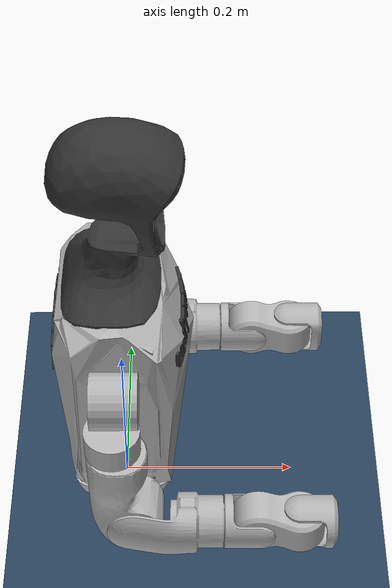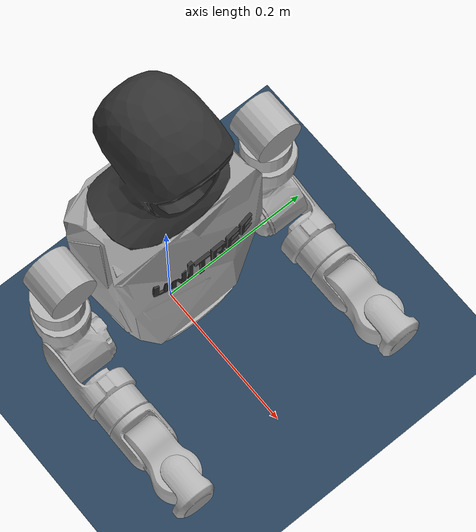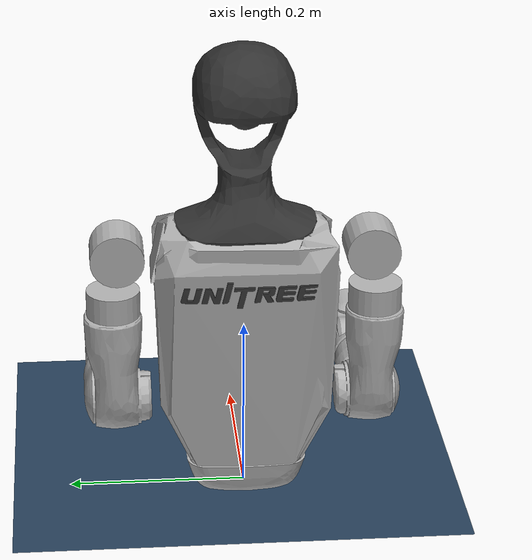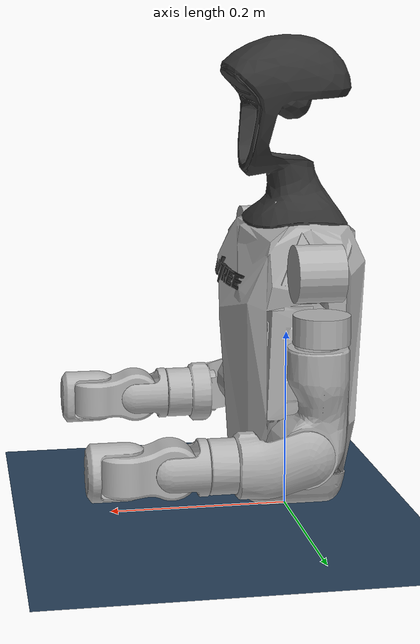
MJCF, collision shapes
<mujoco model="g1_dual_arm">
  <compiler angle="radian" meshdir="meshes"/>

  <asset>
    <mesh name="waist_yaw_link" file="waist_yaw_link.STL"/>
    <mesh name="waist_roll_link" file="waist_roll_link.STL"/>
    <mesh name="torso_link" file="torso_link.STL"/>
    <mesh name="logo_link" file="logo_link.STL"/>
    <mesh name="head_link" file="head_link.STL"/>
    <mesh name="waist_support_link" file="waist_support_link.STL"/>
    <mesh name="left_shoulder_pitch_link" file="left_shoulder_pitch_link.STL"/>
    <mesh name="left_shoulder_roll_link" file="left_shoulder_roll_link.STL"/>
    <mesh name="left_shoulder_yaw_link" file="left_shoulder_yaw_link.STL"/>
    <mesh name="left_elbow_link" file="left_elbow_link.STL"/>
    <mesh name="left_wrist_roll_link" file="left_wrist_roll_link.STL"/>
    <mesh name="left_wrist_pitch_link" file="left_wrist_pitch_link.STL"/>
    <mesh name="left_wrist_yaw_link" file="left_wrist_yaw_link.STL"/>
    <mesh name="left_rubber_hand" file="left_rubber_hand.STL"/>
    <mesh name="right_shoulder_pitch_link" file="right_shoulder_pitch_link.STL"/>
    <mesh name="right_shoulder_roll_link" file="right_shoulder_roll_link.STL"/>
    <mesh name="right_shoulder_yaw_link" file="right_shoulder_yaw_link.STL"/>
    <mesh name="right_elbow_link" file="right_elbow_link.STL"/>
    <mesh name="right_wrist_roll_link" file="right_wrist_roll_link.STL"/>
    <mesh name="right_wrist_pitch_link" file="right_wrist_pitch_link.STL"/>
    <mesh name="right_wrist_yaw_link" file="right_wrist_yaw_link.STL"/>
    <mesh name="right_rubber_hand" file="right_rubber_hand.STL"/>
  </asset>

  <worldbody>
    <geom type="mesh" contype="0" conaffinity="0" group="1" density="0" rgba="0.7 0.7 0.7 1" mesh="waist_yaw_link"/>
    <geom pos="-0.0039635 0 0.035" type="mesh" contype="0" conaffinity="0" group="1" density="0" rgba="0.7 0.7 0.7 1" mesh="waist_roll_link"/>
    <geom pos="-0.0039635 0 0.054" type="mesh" contype="0" conaffinity="0" group="1" density="0" rgba="0.7 0.7 0.7 1" mesh="torso_link"/>
    <geom pos="-0.0039635 0 0.054" type="mesh" rgba="0.7 0.7 0.7 1" mesh="torso_link"/>
    <geom type="mesh" contype="0" conaffinity="0" group="1" density="0" rgba="0.2 0.2 0.2 1" mesh="logo_link"/>
    <geom type="mesh" rgba="0.2 0.2 0.2 1" mesh="logo_link"/>
    <geom type="mesh" contype="0" conaffinity="0" group="1" density="0" rgba="0.2 0.2 0.2 1" mesh="head_link"/>
    <geom type="mesh" rgba="0.2 0.2 0.2 1" mesh="head_link"/>
    <geom type="mesh" contype="0" conaffinity="0" group="1" density="0" rgba="0.7 0.7 0.7 1" mesh="waist_support_link"/>
    <geom type="mesh" rgba="0.7 0.7 0.7 1" mesh="waist_support_link"/>
    <body name="left_shoulder_pitch_link" pos="-7.2e-06 0.10022 0.29178" quat="0.990264 0.139201 1.38722e-05 -9.86868e-05">
      <inertial pos="0 0.035892 -0.011628" quat="0.654152 0.0130458 -0.326267 0.68225" mass="0.718" diaginertia="0.000465864 0.000432842 0.000406394"/>
      <joint name="left_shoulder_pitch_joint" pos="0 0 0" axis="0 1 0" range="-3.0892 2.6704" actuatorfrcrange="-25 25"/>
      <geom type="mesh" contype="0" conaffinity="0" group="1" density="0" rgba="0.7 0.7 0.7 1" mesh="left_shoulder_pitch_link"/>
      <geom size="0.03 0.025" pos="0 0.04 -0.01" quat="0.707107 0 0.707107 0" type="cylinder" rgba="0.7 0.7 0.7 1"/>
      <body name="left_shoulder_roll_link" pos="0 0.038 -0.013831" quat="0.990268 -0.139172 0 0">
        <inertial pos="-0.000227 0.00727 -0.063243" quat="0.701256 -0.0196223 -0.00710317 0.712604" mass="0.643" diaginertia="0.000691311 0.000618011 0.000388977"/>
        <joint name="left_shoulder_roll_joint" pos="0 0 0" axis="1 0 0" range="-1.5882 2.2515" actuatorfrcrange="-25 25"/>
        <geom type="mesh" contype="0" conaffinity="0" group="1" density="0" rgba="0.7 0.7 0.7 1" mesh="left_shoulder_roll_link"/>
        <geom size="0.03 0.015" pos="-0.004 0.006 -0.053" type="cylinder" rgba="0.7 0.7 0.7 1"/>
        <body name="left_shoulder_yaw_link" pos="0 0.00624 -0.1032">
          <inertial pos="0.010773 -0.002949 -0.072009" quat="0.716879 -0.0964829 -0.0679942 0.687134" mass="0.734" diaginertia="0.00106187 0.00103217 0.000400661"/>
          <joint name="left_shoulder_yaw_joint" pos="0 0 0" axis="0 0 1" range="-2.618 2.618" actuatorfrcrange="-25 25"/>
          <geom type="mesh" contype="0" conaffinity="0" group="1" density="0" rgba="0.7 0.7 0.7 1" mesh="left_shoulder_yaw_link"/>
          <geom type="mesh" rgba="0.7 0.7 0.7 1" mesh="left_shoulder_yaw_link"/>
          <body name="left_elbow_link" pos="0.015783 0 -0.080518">
            <inertial pos="0.064956 0.004454 -0.010062" quat="0.541765 0.636132 0.388821 0.388129" mass="0.6" diaginertia="0.000443035 0.000421612 0.000259353"/>
            <joint name="left_elbow_joint" pos="0 0 0" axis="0 1 0" range="-1.0472 2.0944" actuatorfrcrange="-25 25"/>
            <geom type="mesh" contype="0" conaffinity="0" group="1" density="0" rgba="0.7 0.7 0.7 1" mesh="left_elbow_link"/>
            <geom type="mesh" rgba="0.7 0.7 0.7 1" mesh="left_elbow_link"/>
            <body name="left_wrist_roll_link" pos="0.1 0.00188791 -0.01">
              <inertial pos="0.0171394 0.000537591 4.8864e-07" quat="0.575338 0.411667 -0.574906 0.411094" mass="0.085445" diaginertia="5.48211e-05 4.96646e-05 3.57798e-05"/>
              <joint name="left_wrist_roll_joint" pos="0 0 0" axis="1 0 0" range="-1.97222 1.97222" actuatorfrcrange="-25 25"/>
              <geom type="mesh" contype="0" conaffinity="0" group="1" density="0" rgba="0.7 0.7 0.7 1" mesh="left_wrist_roll_link"/>
              <geom type="mesh" rgba="0.7 0.7 0.7 1" mesh="left_wrist_roll_link"/>
              <body name="left_wrist_pitch_link" pos="0.038 0 0">
                <inertial pos="0.0229999 -0.00111685 -0.00111658" quat="0.249998 0.661363 0.293036 0.643608" mass="0.48405" diaginertia="0.000430353 0.000429873 0.000164648"/>
                <joint name="left_wrist_pitch_joint" pos="0 0 0" axis="0 1 0" range="-1.61443 1.61443" actuatorfrcrange="-5 5"/>
                <geom type="mesh" contype="0" conaffinity="0" group="1" density="0" rgba="0.7 0.7 0.7 1" mesh="left_wrist_pitch_link"/>
                <geom type="mesh" rgba="0.7 0.7 0.7 1" mesh="left_wrist_pitch_link"/>
                <body name="left_wrist_yaw_link" pos="0.046 0 0">
                  <inertial pos="0.0708244 0.000191745 0.00161742" quat="0.510571 0.526295 0.468078 0.493188" mass="0.254576" diaginertia="0.000646113 0.000559993 0.000147566"/>
                  <joint name="left_wrist_yaw_joint" pos="0 0 0" axis="0 0 1" range="-1.61443 1.61443" actuatorfrcrange="-5 5"/>
                  <geom type="mesh" contype="0" conaffinity="0" group="1" density="0" rgba="0.7 0.7 0.7 1" mesh="left_wrist_yaw_link"/>
                  <geom type="mesh" rgba="0.7 0.7 0.7 1" mesh="left_wrist_yaw_link"/>
                  <geom pos="0.0415 0.003 0" quat="1 0 0 0" type="mesh" contype="0" conaffinity="0" group="1" density="0" rgba="0.7 0.7 0.7 1" mesh="left_rubber_hand"/>
                </body>
              </body>
            </body>
          </body>
        </body>
      </body>
    </body>
    <body name="right_shoulder_pitch_link" pos="-7.2e-06 -0.10021 0.29178" quat="0.990264 -0.139201 1.38722e-05 9.86868e-05">
      <inertial pos="0 -0.035892 -0.011628" quat="0.68225 -0.326267 0.0130458 0.654152" mass="0.718" diaginertia="0.000465864 0.000432842 0.000406394"/>
      <joint name="right_shoulder_pitch_joint" pos="0 0 0" axis="0 1 0" range="-3.0892 2.6704" actuatorfrcrange="-25 25"/>
      <geom type="mesh" contype="0" conaffinity="0" group="1" density="0" rgba="0.7 0.7 0.7 1" mesh="right_shoulder_pitch_link"/>
      <geom size="0.03 0.025" pos="0 -0.04 -0.01" quat="0.707107 0 0.707107 0" type="cylinder" rgba="0.7 0.7 0.7 1"/>
      <body name="right_shoulder_roll_link" pos="0 -0.038 -0.013831" quat="0.990268 0.139172 0 0">
        <inertial pos="-0.000227 -0.00727 -0.063243" quat="0.712604 -0.00710317 -0.0196223 0.701256" mass="0.643" diaginertia="0.000691311 0.000618011 0.000388977"/>
        <joint name="right_shoulder_roll_joint" pos="0 0 0" axis="1 0 0" range="-2.2515 1.5882" actuatorfrcrange="-25 25"/>
        <geom type="mesh" contype="0" conaffinity="0" group="1" density="0" rgba="0.7 0.7 0.7 1" mesh="right_shoulder_roll_link"/>
        <geom size="0.03 0.015" pos="-0.004 -0.006 -0.053" type="cylinder" rgba="0.7 0.7 0.7 1"/>
        <body name="right_shoulder_yaw_link" pos="0 -0.00624 -0.1032">
          <inertial pos="0.010773 0.002949 -0.072009" quat="0.687134 -0.0679942 -0.0964829 0.716879" mass="0.734" diaginertia="0.00106187 0.00103217 0.000400661"/>
          <joint name="right_shoulder_yaw_joint" pos="0 0 0" axis="0 0 1" range="-2.618 2.618" actuatorfrcrange="-25 25"/>
          <geom type="mesh" contype="0" conaffinity="0" group="1" density="0" rgba="0.7 0.7 0.7 1" mesh="right_shoulder_yaw_link"/>
          <geom type="mesh" rgba="0.7 0.7 0.7 1" mesh="right_shoulder_yaw_link"/>
          <body name="right_elbow_link" pos="0.015783 0 -0.080518">
            <inertial pos="0.064956 -0.004454 -0.010062" quat="0.388129 0.388821 0.636132 0.541765" mass="0.6" diaginertia="0.000443035 0.000421612 0.000259353"/>
            <joint name="right_elbow_joint" pos="0 0 0" axis="0 1 0" range="-1.0472 2.0944" actuatorfrcrange="-25 25"/>
            <geom type="mesh" contype="0" conaffinity="0" group="1" density="0" rgba="0.7 0.7 0.7 1" mesh="right_elbow_link"/>
            <geom type="mesh" rgba="0.7 0.7 0.7 1" mesh="right_elbow_link"/>
            <body name="right_wrist_roll_link" pos="0.1 -0.00188791 -0.01">
              <inertial pos="0.0171394 -0.000537591 4.8864e-07" quat="0.411667 0.575338 -0.411094 0.574906" mass="0.085445" diaginertia="5.48211e-05 4.96646e-05 3.57798e-05"/>
              <joint name="right_wrist_roll_joint" pos="0 0 0" axis="1 0 0" range="-1.97222 1.97222" actuatorfrcrange="-25 25"/>
              <geom type="mesh" contype="0" conaffinity="0" group="1" density="0" rgba="0.7 0.7 0.7 1" mesh="right_wrist_roll_link"/>
              <geom type="mesh" rgba="0.7 0.7 0.7 1" mesh="right_wrist_roll_link"/>
              <body name="right_wrist_pitch_link" pos="0.038 0 0">
                <inertial pos="0.0229999 0.00111685 -0.00111658" quat="0.643608 0.293036 0.661363 0.249998" mass="0.48405" diaginertia="0.000430353 0.000429873 0.000164648"/>
                <joint name="right_wrist_pitch_joint" pos="0 0 0" axis="0 1 0" range="-1.61443 1.61443" actuatorfrcrange="-5 5"/>
                <geom type="mesh" contype="0" conaffinity="0" group="1" density="0" rgba="0.7 0.7 0.7 1" mesh="right_wrist_pitch_link"/>
                <geom type="mesh" rgba="0.7 0.7 0.7 1" mesh="right_wrist_pitch_link"/>
                <body name="right_wrist_yaw_link" pos="0.046 0 0">
                  <inertial pos="0.0708244 -0.000191745 0.00161742" quat="0.493188 0.468078 0.526295 0.510571" mass="0.254576" diaginertia="0.000646113 0.000559993 0.000147566"/>
                  <joint name="right_wrist_yaw_joint" pos="0 0 0" axis="0 0 1" range="-1.61443 1.61443" actuatorfrcrange="-5 5"/>
                  <geom type="mesh" contype="0" conaffinity="0" group="1" density="0" rgba="0.7 0.7 0.7 1" mesh="right_wrist_yaw_link"/>
                  <geom type="mesh" rgba="0.7 0.7 0.7 1" mesh="right_wrist_yaw_link"/>
                  <geom pos="0.0415 -0.003 0" quat="1 0 0 0" type="mesh" contype="0" conaffinity="0" group="1" density="0" rgba="0.7 0.7 0.7 1" mesh="right_rubber_hand"/>
                </body>
              </body>
            </body>
          </body>
        </body>
      </body>
    </body>
  </worldbody>

  <actuator>
    <motor name="left_shoulder_pitch_joint"  joint="left_shoulder_pitch_joint"  ctrlrange="-25 25"/>
    <motor name="left_shoulder_roll_joint"   joint="left_shoulder_roll_joint"   ctrlrange="-25 25"/>
    <motor name="left_shoulder_yaw_joint"    joint="left_shoulder_yaw_joint"    ctrlrange="-25 25"/>
    <motor name="left_elbow_joint"           joint="left_elbow_joint"           ctrlrange="-25 25"/>
    <motor name="left_wrist_roll_joint"      joint="left_wrist_roll_joint"      ctrlrange="-5 5"/>
    <motor name="left_wrist_pitch_joint"     joint="left_wrist_pitch_joint"     ctrlrange="-5 5"/>
    <motor name="left_wrist_yaw_joint"       joint="left_wrist_yaw_joint"       ctrlrange="-5 5"/>
    <motor name="right_shoulder_pitch_joint" joint="right_shoulder_pitch_joint" ctrlrange="-25 25"/>
    <motor name="right_shoulder_roll_joint"  joint="right_shoulder_roll_joint"  ctrlrange="-25 25"/>
    <motor name="right_shoulder_yaw_joint"   joint="right_shoulder_yaw_joint"   ctrlrange="-25 25"/>
    <motor name="right_elbow_joint"          joint="right_elbow_joint"          ctrlrange="-25 25"/>
    <motor name="right_wrist_roll_joint"     joint="right_wrist_roll_joint"     ctrlrange="-5 5"/>
    <motor name="right_wrist_pitch_joint"    joint="right_wrist_pitch_joint"    ctrlrange="-5 5"/>
    <motor name="right_wrist_yaw_joint"      joint="right_wrist_yaw_joint"      ctrlrange="-5 5"/>
</actuator>

  <!-- setup scene -->
  <statistic center="1.0 0.7 1.0" extent="0.8"/>
  <visual>
    <headlight diffuse="0.6 0.6 0.6" ambient="0.1 0.1 0.1" specular="0.9 0.9 0.9"/>
    <rgba haze="0.15 0.25 0.35 1"/>
    <global azimuth="-140" elevation="-20"/>
  </visual>
  <asset>
    <texture type="skybox" builtin="flat" rgb1="0 0 0" rgb2="0 0 0" width="512" height="3072"/>
    <texture type="2d" name="groundplane" builtin="checker" mark="edge" rgb1="0.2 0.3 0.4" rgb2="0.1 0.2 0.3" markrgb="0.8 0.8 0.8" width="300" height="300"/>
    <material name="groundplane" texture="groundplane" texuniform="true" texrepeat="5 5" reflectance="0.2"/>
  </asset>
  <worldbody>
    <light pos="1 0 3.5" dir="0 0 -1" directional="true"/>
    <geom name="floor" size="0 0 0.05" type="plane" material="groundplane"/>
  </worldbody>
</mujoco>
